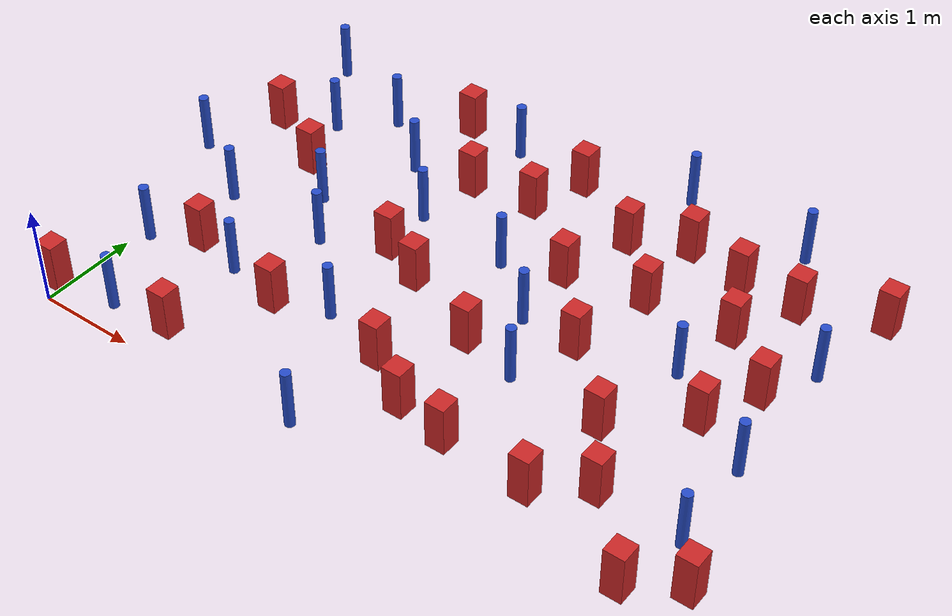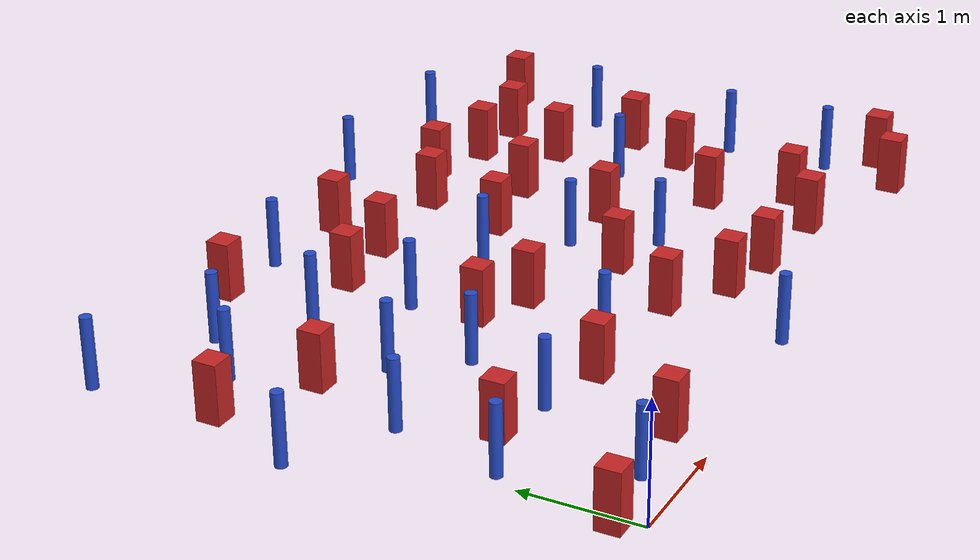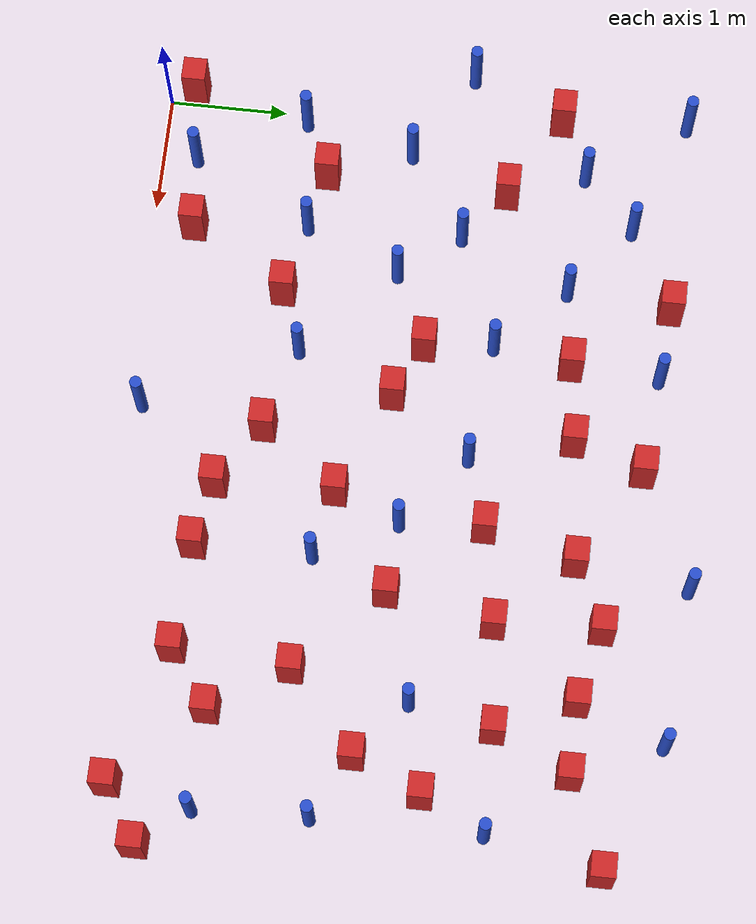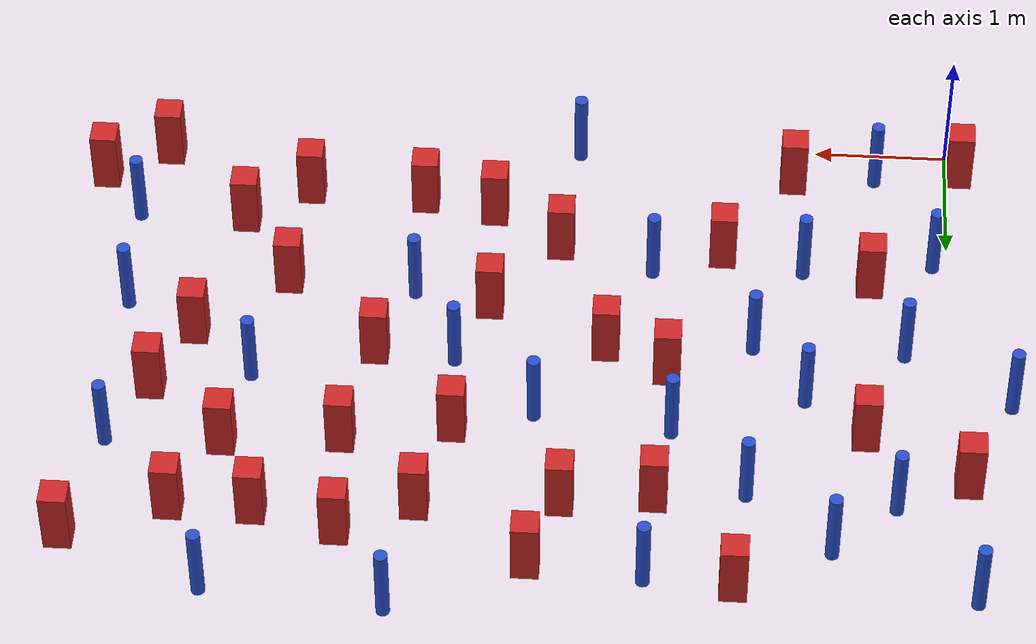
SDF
<sdf version="1.6">
 <model name="dense_12">
  <model name="square_post_obstacle1">
   <static>true</static>
   <pose>3.60561085752 3.06510060845 -6.11067671241e-07 -5.50515727128e-06 -8.79689657224e-07 2.37013304536e-05</pose>
   <link name="link">
    <pose>0 0 0.25 0 -0 0</pose>
    <inertial>
     <mass>100</mass>
     <inertia>
      <ixx>0.166667</ixx>
      <ixy>0</ixy>
      <ixz>0</ixz>
      <iyy>0.166667</iyy>
      <iyz>0</iyz>
      <izz>0.166667</izz>
     </inertia>
    </inertial>
    <collision name="collision"><geometry><box><size>.2 .2 .5</size></box></geometry></collision>
    <visual name="visual">
     <geometry><box><size>.2 .2 .5</size></box></geometry>
     <material>
      <script><name>Gazebo/Red</name><uri>file://media/materials/scripts/gazebo.material</uri></script>
     </material>
    </visual>
   </link>
  </model>
  <model name="pole_obstacle0">
   <static>true</static>
   <pose>2.01684290447 2.99197757127 -9.47619616065e-06 5.49618799738e-07 2.36310414047e-07 -1.55090534808e-07</pose>
   <link name="link">
    <pose>0 0 0.3 0 -0 0</pose>
    <inertial>
     <mass>1</mass>
     <inertia><ixx>0.145833</ixx><ixy>0</ixy><ixz>0</ixz><iyy>0.145833</iyy><iyz>0</iyz><izz>0.125</izz></inertia>
    </inertial>
    <collision name="collision">
     <geometry><cylinder><radius>0.05</radius><length>.6</length></cylinder></geometry>
    </collision>
    <visual name="visual">
     <geometry><cylinder><radius>0.05</radius><length>.6</length></cylinder></geometry>
     <material>
      <script><name>Gazebo/Blue</name><uri>file://media/materials/scripts/gazebo.material</uri></script>
     </material>
    </visual>
   </link>
  </model>
  <model name="pole_obstacle3">
   <static>true</static>
   <pose>6.12126041712 1.92768375661 -9.47619616065e-06 5.49618799738e-07 2.36310414071e-07 -1.55090534796e-07</pose>
   <link name="link">
    <pose>0 0 0.3 0 -0 0</pose>
    <inertial>
     <mass>1</mass>
     <inertia><ixx>0.145833</ixx><ixy>0</ixy><ixz>0</ixz><iyy>0.145833</iyy><iyz>0</iyz><izz>0.125</izz></inertia>
    </inertial>
    <collision name="collision">
     <geometry><cylinder><radius>0.05</radius><length>.6</length></cylinder></geometry>
    </collision>
    <visual name="visual">
     <geometry><cylinder><radius>0.05</radius><length>.6</length></cylinder></geometry>
     <material>
      <script><name>Gazebo/Blue</name><uri>file://media/materials/scripts/gazebo.material</uri></script>
     </material>
    </visual>
   </link>
  </model>
  <model name="square_post_obstacle13">
   <static>true</static>
   <pose>-0.0968748303471 0.21565951249 -6.11067671241e-07 -5.50515727128e-06 -8.79689657224e-07 2.37013304536e-05</pose>
   <link name="link">
    <pose>0 0 0.25 0 -0 0</pose>
    <inertial>
     <mass>100</mass>
     <inertia>
      <ixx>0.166667</ixx>
      <ixy>0</ixy>
      <ixz>0</ixz>
      <iyy>0.166667</iyy>
      <iyz>0</iyz>
      <izz>0.166667</izz>
     </inertia>
    </inertial>
    <collision name="collision"><geometry><box><size>.2 .2 .5</size></box></geometry></collision>
    <visual name="visual">
     <geometry><box><size>.2 .2 .5</size></box></geometry>
     <material>
      <script><name>Gazebo/Red</name><uri>file://media/materials/scripts/gazebo.material</uri></script>
     </material>
    </visual>
   </link>
  </model>
  <model name="square_post_obstacle14">
   <static>true</static>
   <pose>1.17293309374 0.360948759211 -6.11067671241e-07 -5.50515727128e-06 -8.79689657224e-07 2.37013304536e-05</pose>
   <link name="link">
    <pose>0 0 0.25 0 -0 0</pose>
    <inertial>
     <mass>100</mass>
     <inertia>
      <ixx>0.166667</ixx>
      <ixy>0</ixy>
      <ixz>0</ixz>
      <iyy>0.166667</iyy>
      <iyz>0</iyz>
      <izz>0.166667</izz>
     </inertia>
    </inertial>
    <collision name="collision"><geometry><box><size>.2 .2 .5</size></box></geometry></collision>
    <visual name="visual">
     <geometry><box><size>.2 .2 .5</size></box></geometry>
     <material>
      <script><name>Gazebo/Red</name><uri>file://media/materials/scripts/gazebo.material</uri></script>
     </material>
    </visual>
   </link>
  </model>
  <model name="pole_obstacle10">
   <static>true</static>
   <pose>6.1121748208 3.30168363211 -9.47619616065e-06 5.49618799738e-07 2.36310414051e-07 -1.55090534805e-07</pose>
   <link name="link">
    <pose>0 0 0.3 0 -0 0</pose>
    <inertial>
     <mass>1</mass>
     <inertia><ixx>0.145833</ixx><ixy>0</ixy><ixz>0</ixz><iyy>0.145833</iyy><iyz>0</iyz><izz>0.125</izz></inertia>
    </inertial>
    <collision name="collision">
     <geometry><cylinder><radius>0.05</radius><length>.6</length></cylinder></geometry>
    </collision>
    <visual name="visual">
     <geometry><cylinder><radius>0.05</radius><length>.6</length></cylinder></geometry>
     <material>
      <script><name>Gazebo/Blue</name><uri>file://media/materials/scripts/gazebo.material</uri></script>
     </material>
    </visual>
   </link>
  </model>
  <model name="square_post_obstacle21">
   <static>true</static>
   <pose>2.07038140015 2.41308263404 -6.11067671241e-07 -5.50515727128e-06 -8.79689657224e-07 2.37013304536e-05</pose>
   <link name="link">
    <pose>0 0 0.25 0 -0 0</pose>
    <inertial>
     <mass>100</mass>
     <inertia>
      <ixx>0.166667</ixx>
      <ixy>0</ixy>
      <ixz>0</ixz>
      <iyy>0.166667</iyy>
      <iyz>0</iyz>
      <izz>0.166667</izz>
     </inertia>
    </inertial>
    <collision name="collision"><geometry><box><size>.2 .2 .5</size></box></geometry></collision>
    <visual name="visual">
     <geometry><box><size>.2 .2 .5</size></box></geometry>
     <material>
      <script><name>Gazebo/Red</name><uri>file://media/materials/scripts/gazebo.material</uri></script>
     </material>
    </visual>
   </link>
  </model>
  <model name="pole_obstacle15">
   <static>true</static>
   <pose>-0.46060873047 2.60166311697 -9.47619616065e-06 5.49618799737e-07 2.36310414073e-07 -1.55090534793e-07</pose>
   <link name="link">
    <pose>0 0 0.3 0 -0 0</pose>
    <inertial>
     <mass>1</mass>
     <inertia><ixx>0.145833</ixx><ixy>0</ixy><ixz>0</ixz><iyy>0.145833</iyy><iyz>0</iyz><izz>0.125</izz></inertia>
    </inertial>
    <collision name="collision">
     <geometry><cylinder><radius>0.05</radius><length>.6</length></cylinder></geometry>
    </collision>
    <visual name="visual">
     <geometry><cylinder><radius>0.05</radius><length>.6</length></cylinder></geometry>
     <material>
      <script><name>Gazebo/Blue</name><uri>file://media/materials/scripts/gazebo.material</uri></script>
     </material>
    </visual>
   </link>
  </model>
  <model name="square_post_obstacle24">
   <static>true</static>
   <pose>2.78826813013 3.72345648969 -6.11067671241e-07 -5.50515727128e-06 -8.79689657224e-07 2.37013304536e-05</pose>
   <link name="link">
    <pose>0 0 0.25 0 -0 0</pose>
    <inertial>
     <mass>100</mass>
     <inertia>
      <ixx>0.166667</ixx>
      <ixy>0</ixy>
      <ixz>0</ixz>
      <iyy>0.166667</iyy>
      <iyz>0</iyz>
      <izz>0.166667</izz>
     </inertia>
    </inertial>
    <collision name="collision"><geometry><box><size>.2 .2 .5</size></box></geometry></collision>
    <visual name="visual">
     <geometry><box><size>.2 .2 .5</size></box></geometry>
     <material>
      <script><name>Gazebo/Red</name><uri>file://media/materials/scripts/gazebo.material</uri></script>
     </material>
    </visual>
   </link>
  </model>
  <model name="pole_obstacle24">
   <static>true</static>
   <pose>3.63870386104 2.3700347278 -9.47619616065e-06 5.49618799737e-07 2.36310414051e-07 -1.55090534807e-07</pose>
   <link name="link">
    <pose>0 0 0.3 0 -0 0</pose>
    <inertial>
     <mass>1</mass>
     <inertia><ixx>0.145833</ixx><ixy>0</ixy><ixz>0</ixz><iyy>0.145833</iyy><iyz>0</iyz><izz>0.125</izz></inertia>
    </inertial>
    <collision name="collision">
     <geometry><cylinder><radius>0.05</radius><length>.6</length></cylinder></geometry>
    </collision>
    <visual name="visual">
     <geometry><cylinder><radius>0.05</radius><length>.6</length></cylinder></geometry>
     <material>
      <script><name>Gazebo/Blue</name><uri>file://media/materials/scripts/gazebo.material</uri></script>
     </material>
    </visual>
   </link>
  </model>
  <model name="pole_obstacle40">
   <static>true</static>
   <pose>-0.182909817355 4.45832482856 -9.47619616065e-06 5.49618799738e-07 2.36310414064e-07 -1.55090534799e-07</pose>
   <link name="link">
    <pose>0 0 0.3 0 -0 0</pose>
    <inertial>
     <mass>1</mass>
     <inertia><ixx>0.145833</ixx><ixy>0</ixy><ixz>0</ixz><iyy>0.145833</iyy><iyz>0</iyz><izz>0.125</izz></inertia>
    </inertial>
    <collision name="collision">
     <geometry><cylinder><radius>0.05</radius><length>.6</length></cylinder></geometry>
    </collision>
    <visual name="visual">
     <geometry><cylinder><radius>0.05</radius><length>.6</length></cylinder></geometry>
     <material>
      <script><name>Gazebo/Blue</name><uri>file://media/materials/scripts/gazebo.material</uri></script>
     </material>
    </visual>
   </link>
  </model>
  <model name="pole_obstacle45">
   <static>true</static>
   <pose>3.0238369806 2.87842673954 -9.47619616065e-06 5.49618799737e-07 2.36310414051e-07 -1.55090534807e-07</pose>
   <link name="link">
    <pose>0 0 0.3 0 -0 0</pose>
    <inertial>
     <mass>1</mass>
     <inertia><ixx>0.145833</ixx><ixy>0</ixy><ixz>0</ixz><iyy>0.145833</iyy><iyz>0</iyz><izz>0.125</izz></inertia>
    </inertial>
    <collision name="collision">
     <geometry><cylinder><radius>0.05</radius><length>.6</length></cylinder></geometry>
    </collision>
    <visual name="visual">
     <geometry><cylinder><radius>0.05</radius><length>.6</length></cylinder></geometry>
     <material>
      <script><name>Gazebo/Blue</name><uri>file://media/materials/scripts/gazebo.material</uri></script>
     </material>
    </visual>
   </link>
  </model>
  <model name="square_post_obstacle48">
   <static>true</static>
   <pose>4.4022666731 3.21294760835 -6.11067671241e-07 -5.50515727128e-06 -8.79689657224e-07 2.37013304536e-05</pose>
   <link name="link">
    <pose>0 0 0.25 0 -0 0</pose>
    <inertial>
     <mass>100</mass>
     <inertia>
      <ixx>0.166667</ixx>
      <ixy>0</ixy>
      <ixz>0</ixz>
      <iyy>0.166667</iyy>
      <iyz>0</iyz>
      <izz>0.166667</izz>
     </inertia>
    </inertial>
    <collision name="collision"><geometry><box><size>.2 .2 .5</size></box></geometry></collision>
    <visual name="visual">
     <geometry><box><size>.2 .2 .5</size></box></geometry>
     <material>
      <script><name>Gazebo/Red</name><uri>file://media/materials/scripts/gazebo.material</uri></script>
     </material>
    </visual>
   </link>
  </model>
  <model name="square_post_obstacle50">
   <static>true</static>
   <pose>4.86429123127 0.682569277794 -6.11067671241e-07 -5.50515727128e-06 -8.79689657224e-07 2.37013304536e-05</pose>
   <link name="link">
    <pose>0 0 0.25 0 -0 0</pose>
    <inertial>
     <mass>100</mass>
     <inertia>
      <ixx>0.166667</ixx>
      <ixy>0</ixy>
      <ixz>0</ixz>
      <iyy>0.166667</iyy>
      <iyz>0</iyz>
      <izz>0.166667</izz>
     </inertia>
    </inertial>
    <collision name="collision"><geometry><box><size>.2 .2 .5</size></box></geometry></collision>
    <visual name="visual">
     <geometry><box><size>.2 .2 .5</size></box></geometry>
     <material>
      <script><name>Gazebo/Red</name><uri>file://media/materials/scripts/gazebo.material</uri></script>
     </material>
    </visual>
   </link>
  </model>
  <model name="square_post_obstacle52">
   <static>true</static>
   <pose>3.4132791257 1.82123992366 -6.11067671241e-07 -5.50515727128e-06 -8.79689657224e-07 2.37013304536e-05</pose>
   <link name="link">
    <pose>0 0 0.25 0 -0 0</pose>
    <inertial>
     <mass>100</mass>
     <inertia>
      <ixx>0.166667</ixx>
      <ixy>0</ixy>
      <ixz>0</ixz>
      <iyy>0.166667</iyy>
      <iyz>0</iyz>
      <izz>0.166667</izz>
     </inertia>
    </inertial>
    <collision name="collision"><geometry><box><size>.2 .2 .5</size></box></geometry></collision>
    <visual name="visual">
     <geometry><box><size>.2 .2 .5</size></box></geometry>
     <material>
      <script><name>Gazebo/Red</name><uri>file://media/materials/scripts/gazebo.material</uri></script>
     </material>
    </visual>
   </link>
  </model>
  <model name="pole_obstacle52">
   <static>true</static>
   <pose>2.16601597922 4.38896975108 -9.47619616065e-06 5.49618799738e-07 2.3631041406e-07 -1.55090534801e-07</pose>
   <link name="link">
    <pose>0 0 0.3 0 -0 0</pose>
    <inertial>
     <mass>1</mass>
     <inertia><ixx>0.145833</ixx><ixy>0</ixy><ixz>0</ixz><iyy>0.145833</iyy><iyz>0</iyz><izz>0.125</izz></inertia>
    </inertial>
    <collision name="collision">
     <geometry><cylinder><radius>0.05</radius><length>.6</length></cylinder></geometry>
    </collision>
    <visual name="visual">
     <geometry><cylinder><radius>0.05</radius><length>.6</length></cylinder></geometry>
     <material>
      <script><name>Gazebo/Blue</name><uri>file://media/materials/scripts/gazebo.material</uri></script>
     </material>
    </visual>
   </link>
  </model>
  <model name="pole_obstacle53">
   <static>true</static>
   <pose>0.321605103641 2.13557509715 -9.47619616065e-06 5.49618799738e-07 2.36310414065e-07 -1.55090534798e-07</pose>
   <link name="link">
    <pose>0 0 0.3 0 -0 0</pose>
    <inertial>
     <mass>1</mass>
     <inertia><ixx>0.145833</ixx><ixy>0</ixy><ixz>0</ixz><iyy>0.145833</iyy><iyz>0</iyz><izz>0.125</izz></inertia>
    </inertial>
    <collision name="collision">
     <geometry><cylinder><radius>0.05</radius><length>.6</length></cylinder></geometry>
    </collision>
    <visual name="visual">
     <geometry><cylinder><radius>0.05</radius><length>.6</length></cylinder></geometry>
     <material>
      <script><name>Gazebo/Blue</name><uri>file://media/materials/scripts/gazebo.material</uri></script>
     </material>
    </visual>
   </link>
  </model>
  <model name="square_post_obstacle58">
   <static>true</static>
   <pose>5.58534849371 2.20756425732 -6.11067671241e-07 -5.50515727128e-06 -8.79689657224e-07 2.37013304536e-05</pose>
   <link name="link">
    <pose>0 0 0.25 0 -0 0</pose>
    <inertial>
     <mass>100</mass>
     <inertia>
      <ixx>0.166667</ixx>
      <ixy>0</ixy>
      <ixz>0</ixz>
      <iyy>0.166667</iyy>
      <iyz>0</iyz>
      <izz>0.166667</izz>
     </inertia>
    </inertial>
    <collision name="collision"><geometry><box><size>.2 .2 .5</size></box></geometry></collision>
    <visual name="visual">
     <geometry><box><size>.2 .2 .5</size></box></geometry>
     <material>
      <script><name>Gazebo/Red</name><uri>file://media/materials/scripts/gazebo.material</uri></script>
     </material>
    </visual>
   </link>
  </model>
  <model name="pole_obstacle57">
   <static>true</static>
   <pose>0.547766656235 0.299006410185 -9.47619616065e-06 5.49618799737e-07 2.3631041406e-07 -1.55090534799e-07</pose>
   <link name="link">
    <pose>0 0 0.3 0 -0 0</pose>
    <inertial>
     <mass>1</mass>
     <inertia><ixx>0.145833</ixx><ixy>0</ixy><ixz>0</ixz><iyy>0.145833</iyy><iyz>0</iyz><izz>0.125</izz></inertia>
    </inertial>
    <collision name="collision">
     <geometry><cylinder><radius>0.05</radius><length>.6</length></cylinder></geometry>
    </collision>
    <visual name="visual">
     <geometry><cylinder><radius>0.05</radius><length>.6</length></cylinder></geometry>
     <material>
      <script><name>Gazebo/Blue</name><uri>file://media/materials/scripts/gazebo.material</uri></script>
     </material>
    </visual>
   </link>
  </model>
  <model name="pole_obstacle60">
   <static>true</static>
   <pose>5.12357058062 2.60648602858 -9.47619616065e-06 5.49618799738e-07 2.36310414051e-07 -1.55090534805e-07</pose>
   <link name="link">
    <pose>0 0 0.3 0 -0 0</pose>
    <inertial>
     <mass>1</mass>
     <inertia><ixx>0.145833</ixx><ixy>0</ixy><ixz>0</ixz><iyy>0.145833</iyy><iyz>0</iyz><izz>0.125</izz></inertia>
    </inertial>
    <collision name="collision">
     <geometry><cylinder><radius>0.05</radius><length>.6</length></cylinder></geometry>
    </collision>
    <visual name="visual">
     <geometry><cylinder><radius>0.05</radius><length>.6</length></cylinder></geometry>
     <material>
      <script><name>Gazebo/Blue</name><uri>file://media/materials/scripts/gazebo.material</uri></script>
     </material>
    </visual>
   </link>
  </model>
  <model name="square_post_obstacle64">
   <static>true</static>
   <pose>2.91829927237 1.17195060015 -6.11067671241e-07 -5.50515727128e-06 -8.79689657224e-07 2.37013304536e-05</pose>
   <link name="link">
    <pose>0 0 0.25 0 -0 0</pose>
    <inertial>
     <mass>100</mass>
     <inertia>
      <ixx>0.166667</ixx>
      <ixy>0</ixy>
      <ixz>0</ixz>
      <iyy>0.166667</iyy>
      <iyz>0</iyz>
      <izz>0.166667</izz>
     </inertia>
    </inertial>
    <collision name="collision"><geometry><box><size>.2 .2 .5</size></box></geometry></collision>
    <visual name="visual">
     <geometry><box><size>.2 .2 .5</size></box></geometry>
     <material>
      <script><name>Gazebo/Red</name><uri>file://media/materials/scripts/gazebo.material</uri></script>
     </material>
    </visual>
   </link>
  </model>
  <model name="square_post_obstacle65">
   <static>true</static>
   <pose>3.44394849918 0.83601837643 -6.11067671241e-07 -5.50515727128e-06 -8.79689657224e-07 2.37013304536e-05</pose>
   <link name="link">
    <pose>0 0 0.25 0 -0 0</pose>
    <inertial>
     <mass>100</mass>
     <inertia>
      <ixx>0.166667</ixx>
      <ixy>0</ixy>
      <ixz>0</ixz>
      <iyy>0.166667</iyy>
      <iyz>0</iyz>
      <izz>0.166667</izz>
     </inertia>
    </inertial>
    <collision name="collision"><geometry><box><size>.2 .2 .5</size></box></geometry></collision>
    <visual name="visual">
     <geometry><box><size>.2 .2 .5</size></box></geometry>
     <material>
      <script><name>Gazebo/Red</name><uri>file://media/materials/scripts/gazebo.material</uri></script>
     </material>
    </visual>
   </link>
  </model>
  <model name="square_post_obstacle71">
   <static>true</static>
   <pose>3.81692374479 3.82107002358 -6.11067671241e-07 -5.50515727128e-06 -8.79689657224e-07 2.37013304536e-05</pose>
   <link name="link">
    <pose>0 0 0.25 0 -0 0</pose>
    <inertial>
     <mass>100</mass>
     <inertia>
      <ixx>0.166667</ixx>
      <ixy>0</ixy>
      <ixz>0</ixz>
      <iyy>0.166667</iyy>
      <iyz>0</iyz>
      <izz>0.166667</izz>
     </inertia>
    </inertial>
    <collision name="collision"><geometry><box><size>.2 .2 .5</size></box></geometry></collision>
    <visual name="visual">
     <geometry><box><size>.2 .2 .5</size></box></geometry>
     <material>
      <script><name>Gazebo/Red</name><uri>file://media/materials/scripts/gazebo.material</uri></script>
     </material>
    </visual>
   </link>
  </model>
  <model name="square_post_obstacle74">
   <static>true</static>
   <pose>5.56726960221 3.92317340426 -6.11067671241e-07 -5.50515727128e-06 -8.79689657224e-07 2.37013304536e-05</pose>
   <link name="link">
    <pose>0 0 0.25 0 -0 0</pose>
    <inertial>
     <mass>100</mass>
     <inertia>
      <ixx>0.166667</ixx>
      <ixy>0</ixy>
      <ixz>0</ixz>
      <iyy>0.166667</iyy>
      <iyz>0</iyz>
      <izz>0.166667</izz>
     </inertia>
    </inertial>
    <collision name="collision"><geometry><box><size>.2 .2 .5</size></box></geometry></collision>
    <visual name="visual">
     <geometry><box><size>.2 .2 .5</size></box></geometry>
     <material>
      <script><name>Gazebo/Red</name><uri>file://media/materials/scripts/gazebo.material</uri></script>
     </material>
    </visual>
   </link>
  </model>
  <model name="pole_obstacle82">
   <static>true</static>
   <pose>1.46217024665 3.56431129272 -9.47619616065e-06 5.49618799737e-07 2.36310414062e-07 -1.55090534798e-07</pose>
   <link name="link">
    <pose>0 0 0.3 0 -0 0</pose>
    <inertial>
     <mass>1</mass>
     <inertia><ixx>0.145833</ixx><ixy>0</ixy><ixz>0</ixz><iyy>0.145833</iyy><iyz>0</iyz><izz>0.125</izz></inertia>
    </inertial>
    <collision name="collision">
     <geometry><cylinder><radius>0.05</radius><length>.6</length></cylinder></geometry>
    </collision>
    <visual name="visual">
     <geometry><cylinder><radius>0.05</radius><length>.6</length></cylinder></geometry>
     <material>
      <script><name>Gazebo/Blue</name><uri>file://media/materials/scripts/gazebo.material</uri></script>
     </material>
    </visual>
   </link>
  </model>
  <model name="square_post_obstacle80">
   <static>true</static>
   <pose>5.99793431074 0.315845441952 -6.11067671241e-07 -5.50515727128e-06 -8.79689657224e-07 2.37013304536e-05</pose>
   <link name="link">
    <pose>0 0 0.25 0 -0 0</pose>
    <inertial>
     <mass>100</mass>
     <inertia>
      <ixx>0.166667</ixx>
      <ixy>0</ixy>
      <ixz>0</ixz>
      <iyy>0.166667</iyy>
      <iyz>0</iyz>
      <izz>0.166667</izz>
     </inertia>
    </inertial>
    <collision name="collision"><geometry><box><size>.2 .2 .5</size></box></geometry></collision>
    <visual name="visual">
     <geometry><box><size>.2 .2 .5</size></box></geometry>
     <material>
      <script><name>Gazebo/Red</name><uri>file://media/materials/scripts/gazebo.material</uri></script>
     </material>
    </visual>
   </link>
  </model>
  <model name="pole_obstacle93">
   <static>true</static>
   <pose>0.10760399814 1.20183386712 -9.47619616065e-06 5.49618799737e-07 2.36310414057e-07 -1.55090534803e-07</pose>
   <link name="link">
    <pose>0 0 0.3 0 -0 0</pose>
    <inertial>
     <mass>1</mass>
     <inertia><ixx>0.145833</ixx><ixy>0</ixy><ixz>0</ixz><iyy>0.145833</iyy><iyz>0</iyz><izz>0.125</izz></inertia>
    </inertial>
    <collision name="collision">
     <geometry><cylinder><radius>0.05</radius><length>.6</length></cylinder></geometry>
    </collision>
    <visual name="visual">
     <geometry><cylinder><radius>0.05</radius><length>.6</length></cylinder></geometry>
     <material>
      <script><name>Gazebo/Blue</name><uri>file://media/materials/scripts/gazebo.material</uri></script>
     </material>
    </visual>
   </link>
  </model>
  <model name="pole_obstacle98">
   <static>true</static>
   <pose>3.95911625656 4.75906808122 -9.47619616065e-06 5.49618799737e-07 2.36310414049e-07 -1.55090534808e-07</pose>
   <link name="link">
    <pose>0 0 0.3 0 -0 0</pose>
    <inertial>
     <mass>1</mass>
     <inertia><ixx>0.145833</ixx><ixy>0</ixy><ixz>0</ixz><iyy>0.145833</iyy><iyz>0</iyz><izz>0.125</izz></inertia>
    </inertial>
    <collision name="collision">
     <geometry><cylinder><radius>0.05</radius><length>.6</length></cylinder></geometry>
    </collision>
    <visual name="visual">
     <geometry><cylinder><radius>0.05</radius><length>.6</length></cylinder></geometry>
     <material>
      <script><name>Gazebo/Blue</name><uri>file://media/materials/scripts/gazebo.material</uri></script>
     </material>
    </visual>
   </link>
  </model>
  <model name="pole_obstacle100">
   <static>true</static>
   <pose>1.44237367063 2.12480274671 -9.47619616065e-06 5.49618799737e-07 2.36310414062e-07 -1.55090534798e-07</pose>
   <link name="link">
    <pose>0 0 0.3 0 -0 0</pose>
    <inertial>
     <mass>1</mass>
     <inertia><ixx>0.145833</ixx><ixy>0</ixy><ixz>0</ixz><iyy>0.145833</iyy><iyz>0</iyz><izz>0.125</izz></inertia>
    </inertial>
    <collision name="collision">
     <geometry><cylinder><radius>0.05</radius><length>.6</length></cylinder></geometry>
    </collision>
    <visual name="visual">
     <geometry><cylinder><radius>0.05</radius><length>.6</length></cylinder></geometry>
     <material>
      <script><name>Gazebo/Blue</name><uri>file://media/materials/scripts/gazebo.material</uri></script>
     </material>
    </visual>
   </link>
  </model>
  <model name="pole_obstacle101">
   <static>true</static>
   <pose>1.05146225618 2.63058908346 -9.47619616065e-06 5.49618799737e-07 2.36310414062e-07 -1.55090534798e-07</pose>
   <link name="link">
    <pose>0 0 0.3 0 -0 0</pose>
    <inertial>
     <mass>1</mass>
     <inertia><ixx>0.145833</ixx><ixy>0</ixy><ixz>0</ixz><iyy>0.145833</iyy><iyz>0</iyz><izz>0.125</izz></inertia>
    </inertial>
    <collision name="collision">
     <geometry><cylinder><radius>0.05</radius><length>.6</length></cylinder></geometry>
    </collision>
    <visual name="visual">
     <geometry><cylinder><radius>0.05</radius><length>.6</length></cylinder></geometry>
     <material>
      <script><name>Gazebo/Blue</name><uri>file://media/materials/scripts/gazebo.material</uri></script>
     </material>
    </visual>
   </link>
  </model>
  <model name="pole_obstacle107">
   <static>true</static>
   <pose>1.08461921749 1.32073771476 -9.47619616065e-06 5.49618799737e-07 2.36310414065e-07 -1.55090534798e-07</pose>
   <link name="link">
    <pose>0 0 0.3 0 -0 0</pose>
    <inertial>
     <mass>1</mass>
     <inertia><ixx>0.145833</ixx><ixy>0</ixy><ixz>0</ixz><iyy>0.145833</iyy><iyz>0</iyz><izz>0.125</izz></inertia>
    </inertial>
    <collision name="collision">
     <geometry><cylinder><radius>0.05</radius><length>.6</length></cylinder></geometry>
    </collision>
    <visual name="visual">
     <geometry><cylinder><radius>0.05</radius><length>.6</length></cylinder></geometry>
     <material>
      <script><name>Gazebo/Blue</name><uri>file://media/materials/scripts/gazebo.material</uri></script>
     </material>
    </visual>
   </link>
  </model>
  <model name="square_post_obstacle98">
   <static>true</static>
   <pose>4.93567388542 1.64514527499 -6.11067671241e-07 -5.50515727128e-06 -8.79689657224e-07 2.37013304536e-05</pose>
   <link name="link">
    <pose>0 0 0.25 0 -0 0</pose>
    <inertial>
     <mass>100</mass>
     <inertia>
      <ixx>0.166667</ixx>
      <ixy>0</ixy>
      <ixz>0</ixz>
      <iyy>0.166667</iyy>
      <iyz>0</iyz>
      <izz>0.166667</izz>
     </inertia>
    </inertial>
    <collision name="collision"><geometry><box><size>.2 .2 .5</size></box></geometry></collision>
    <visual name="visual">
     <geometry><box><size>.2 .2 .5</size></box></geometry>
     <material>
      <script><name>Gazebo/Red</name><uri>file://media/materials/scripts/gazebo.material</uri></script>
     </material>
    </visual>
   </link>
  </model>
  <model name="pole_obstacle113">
   <static>true</static>
   <pose>0.84218929867 4.06209744897 -9.47619616065e-06 5.49618799737e-07 2.36310414065e-07 -1.55090534796e-07</pose>
   <link name="link">
    <pose>0 0 0.3 0 -0 0</pose>
    <inertial>
     <mass>1</mass>
     <inertia><ixx>0.145833</ixx><ixy>0</ixy><ixz>0</ixz><iyy>0.145833</iyy><iyz>0</iyz><izz>0.125</izz></inertia>
    </inertial>
    <collision name="collision">
     <geometry><cylinder><radius>0.05</radius><length>.6</length></cylinder></geometry>
    </collision>
    <visual name="visual">
     <geometry><cylinder><radius>0.05</radius><length>.6</length></cylinder></geometry>
     <material>
      <script><name>Gazebo/Blue</name><uri>file://media/materials/scripts/gazebo.material</uri></script>
     </material>
    </visual>
   </link>
  </model>
  <model name="square_post_obstacle100">
   <static>true</static>
   <pose>2.99437277476 4.31176931934 -6.11067671241e-07 -5.50515727128e-06 -8.79689657224e-07 2.37013304536e-05</pose>
   <link name="link">
    <pose>0 0 0.25 0 -0 0</pose>
    <inertial>
     <mass>100</mass>
     <inertia>
      <ixx>0.166667</ixx>
      <ixy>0</ixy>
      <ixz>0</ixz>
      <iyy>0.166667</iyy>
      <iyz>0</iyz>
      <izz>0.166667</izz>
     </inertia>
    </inertial>
    <collision name="collision"><geometry><box><size>.2 .2 .5</size></box></geometry></collision>
    <visual name="visual">
     <geometry><box><size>.2 .2 .5</size></box></geometry>
     <material>
      <script><name>Gazebo/Red</name><uri>file://media/materials/scripts/gazebo.material</uri></script>
     </material>
    </visual>
   </link>
  </model>
  <model name="square_post_obstacle107">
   <static>true</static>
   <pose>2.5309783764 2.2004067568 -6.11067671241e-07 -5.50515727128e-06 -8.79689657224e-07 2.37013304536e-05</pose>
   <link name="link">
    <pose>0 0 0.25 0 -0 0</pose>
    <inertial>
     <mass>100</mass>
     <inertia>
      <ixx>0.166667</ixx>
      <ixy>0</ixy>
      <ixz>0</ixz>
      <iyy>0.166667</iyy>
      <iyz>0</iyz>
      <izz>0.166667</izz>
     </inertia>
    </inertial>
    <collision name="collision"><geometry><box><size>.2 .2 .5</size></box></geometry></collision>
    <visual name="visual">
     <geometry><box><size>.2 .2 .5</size></box></geometry>
     <material>
      <script><name>Gazebo/Red</name><uri>file://media/materials/scripts/gazebo.material</uri></script>
     </material>
    </visual>
   </link>
  </model>
  <model name="square_post_obstacle109">
   <static>true</static>
   <pose>4.23049179861 2.33039096919 -6.11067671241e-07 -5.50515727128e-06 -8.79689657224e-07 2.37013304536e-05</pose>
   <link name="link">
    <pose>0 0 0.25 0 -0 0</pose>
    <inertial>
     <mass>100</mass>
     <inertia>
      <ixx>0.166667</ixx>
      <ixy>0</ixy>
      <ixz>0</ixz>
      <iyy>0.166667</iyy>
      <iyz>0</iyz>
      <izz>0.166667</izz>
     </inertia>
    </inertial>
    <collision name="collision"><geometry><box><size>.2 .2 .5</size></box></geometry></collision>
    <visual name="visual">
     <geometry><box><size>.2 .2 .5</size></box></geometry>
     <material>
      <script><name>Gazebo/Red</name><uri>file://media/materials/scripts/gazebo.material</uri></script>
     </material>
    </visual>
   </link>
  </model>
  <model name="square_post_obstacle115">
   <static>true</static>
   <pose>5.84193627538 2.77699016452 -6.11067671241e-07 -5.50515727128e-06 -8.79689657224e-07 2.37013304536e-05</pose>
   <link name="link">
    <pose>0 0 0.25 0 -0 0</pose>
    <inertial>
     <mass>100</mass>
     <inertia>
      <ixx>0.166667</ixx>
      <ixy>0</ixy>
      <ixz>0</ixz>
      <iyy>0.166667</iyy>
      <iyz>0</iyz>
      <izz>0.166667</izz>
     </inertia>
    </inertial>
    <collision name="collision"><geometry><box><size>.2 .2 .5</size></box></geometry></collision>
    <visual name="visual">
     <geometry><box><size>.2 .2 .5</size></box></geometry>
     <material>
      <script><name>Gazebo/Red</name><uri>file://media/materials/scripts/gazebo.material</uri></script>
     </material>
    </visual>
   </link>
  </model>
  <model name="square_post_obstacle128">
   <static>true</static>
   <pose>6.45887169266 0.600241494292 -6.11067671241e-07 -5.50515727128e-06 -8.79689657224e-07 2.37013304536e-05</pose>
   <link name="link">
    <pose>0 0 0.25 0 -0 0</pose>
    <inertial>
     <mass>100</mass>
     <inertia>
      <ixx>0.166667</ixx>
      <ixy>0</ixy>
      <ixz>0</ixz>
      <iyy>0.166667</iyy>
      <iyz>0</iyz>
      <izz>0.166667</izz>
     </inertia>
    </inertial>
    <collision name="collision"><geometry><box><size>.2 .2 .5</size></box></geometry></collision>
    <visual name="visual">
     <geometry><box><size>.2 .2 .5</size></box></geometry>
     <material>
      <script><name>Gazebo/Red</name><uri>file://media/materials/scripts/gazebo.material</uri></script>
     </material>
    </visual>
   </link>
  </model>
  <model name="square_post_obstacle135">
   <static>true</static>
   <pose>2.1214784605 3.64706732813 -6.11067671241e-07 -5.50515727128e-06 -8.79689657224e-07 2.37013304536e-05</pose>
   <link name="link">
    <pose>0 0 0.25 0 -0 0</pose>
    <inertial>
     <mass>100</mass>
     <inertia>
      <ixx>0.166667</ixx>
      <ixy>0</ixy>
      <ixz>0</ixz>
      <iyy>0.166667</iyy>
      <iyz>0</iyz>
      <izz>0.166667</izz>
     </inertia>
    </inertial>
    <collision name="collision"><geometry><box><size>.2 .2 .5</size></box></geometry></collision>
    <visual name="visual">
     <geometry><box><size>.2 .2 .5</size></box></geometry>
     <material>
      <script><name>Gazebo/Red</name><uri>file://media/materials/scripts/gazebo.material</uri></script>
     </material>
    </visual>
   </link>
  </model>
  <model name="pole_obstacle153">
   <static>true</static>
   <pose>2.82440432865 0.137287715491 -9.47619616065e-06 5.49618799737e-07 2.36310414074e-07 -1.55090534793e-07</pose>
   <link name="link">
    <pose>0 0 0.3 0 -0 0</pose>
    <inertial>
     <mass>1</mass>
     <inertia><ixx>0.145833</ixx><ixy>0</ixy><ixz>0</ixz><iyy>0.145833</iyy><iyz>0</iyz><izz>0.125</izz></inertia>
    </inertial>
    <collision name="collision">
     <geometry><cylinder><radius>0.05</radius><length>.6</length></cylinder></geometry>
    </collision>
    <visual name="visual">
     <geometry><cylinder><radius>0.05</radius><length>.6</length></cylinder></geometry>
     <material>
      <script><name>Gazebo/Blue</name><uri>file://media/materials/scripts/gazebo.material</uri></script>
     </material>
    </visual>
   </link>
  </model>
  <model name="square_post_obstacle150">
   <static>true</static>
   <pose>6.30704758825 4.23295420032 -6.11067671241e-07 -5.50515727128e-06 -8.79689657224e-07 2.37013304536e-05</pose>
   <link name="link">
    <pose>0 0 0.25 0 -0 0</pose>
    <inertial>
     <mass>100</mass>
     <inertia>
      <ixx>0.166667</ixx>
      <ixy>0</ixy>
      <ixz>0</ixz>
      <iyy>0.166667</iyy>
      <iyz>0</iyz>
      <izz>0.166667</izz>
     </inertia>
    </inertial>
    <collision name="collision"><geometry><box><size>.2 .2 .5</size></box></geometry></collision>
    <visual name="visual">
     <geometry><box><size>.2 .2 .5</size></box></geometry>
     <material>
      <script><name>Gazebo/Red</name><uri>file://media/materials/scripts/gazebo.material</uri></script>
     </material>
    </visual>
   </link>
  </model>
  <model name="square_post_obstacle156">
   <static>true</static>
   <pose>-0.130217988659 3.38574543311 -6.11067671241e-07 -5.50515727128e-06 -8.79689657224e-07 2.37013304536e-05</pose>
   <link name="link">
    <pose>0 0 0.25 0 -0 0</pose>
    <inertial>
     <mass>100</mass>
     <inertia>
      <ixx>0.166667</ixx>
      <ixy>0</ixy>
      <ixz>0</ixz>
      <iyy>0.166667</iyy>
      <iyz>0</iyz>
      <izz>0.166667</izz>
     </inertia>
    </inertial>
    <collision name="collision"><geometry><box><size>.2 .2 .5</size></box></geometry></collision>
    <visual name="visual">
     <geometry><box><size>.2 .2 .5</size></box></geometry>
     <material>
      <script><name>Gazebo/Red</name><uri>file://media/materials/scripts/gazebo.material</uri></script>
     </material>
    </visual>
   </link>
  </model>
  <model name="pole_obstacle177">
   <static>true</static>
   <pose>6.15233220444 0.996883784401 -9.47619616065e-06 5.49618799737e-07 2.36310414073e-07 -1.55090534792e-07</pose>
   <link name="link">
    <pose>0 0 0.3 0 -0 0</pose>
    <inertial>
     <mass>1</mass>
     <inertia><ixx>0.145833</ixx><ixy>0</ixy><ixz>0</ixz><iyy>0.145833</iyy><iyz>0</iyz><izz>0.125</izz></inertia>
    </inertial>
    <collision name="collision">
     <geometry><cylinder><radius>0.05</radius><length>.6</length></cylinder></geometry>
    </collision>
    <visual name="visual">
     <geometry><cylinder><radius>0.05</radius><length>.6</length></cylinder></geometry>
     <material>
      <script><name>Gazebo/Blue</name><uri>file://media/materials/scripts/gazebo.material</uri></script>
     </material>
    </visual>
   </link>
  </model>
  <model name="square_post_obstacle171">
   <static>true</static>
   <pose>4.360794451 4.08527384537 -6.11067671241e-07 -5.50515727128e-06 -8.79689657224e-07 2.37013304536e-05</pose>
   <link name="link">
    <pose>0 0 0.25 0 -0 0</pose>
    <inertial>
     <mass>100</mass>
     <inertia>
      <ixx>0.166667</ixx>
      <ixy>0</ixy>
      <ixz>0</ixz>
      <iyy>0.166667</iyy>
      <iyz>0</iyz>
      <izz>0.166667</izz>
     </inertia>
    </inertial>
    <collision name="collision"><geometry><box><size>.2 .2 .5</size></box></geometry></collision>
    <visual name="visual">
     <geometry><box><size>.2 .2 .5</size></box></geometry>
     <material>
      <script><name>Gazebo/Red</name><uri>file://media/materials/scripts/gazebo.material</uri></script>
     </material>
    </visual>
   </link>
  </model>
  <model name="square_post_obstacle172">
   <static>true</static>
   <pose>3.98167012698 0.731172233416 -6.11067671241e-07 -5.50515727128e-06 -8.79689657224e-07 2.37013304536e-05</pose>
   <link name="link">
    <pose>0 0 0.25 0 -0 0</pose>
    <inertial>
     <mass>100</mass>
     <inertia>
      <ixx>0.166667</ixx>
      <ixy>0</ixy>
      <ixz>0</ixz>
      <iyy>0.166667</iyy>
      <iyz>0</iyz>
      <izz>0.166667</izz>
     </inertia>
    </inertial>
    <collision name="collision"><geometry><box><size>.2 .2 .5</size></box></geometry></collision>
    <visual name="visual">
     <geometry><box><size>.2 .2 .5</size></box></geometry>
     <material>
      <script><name>Gazebo/Red</name><uri>file://media/materials/scripts/gazebo.material</uri></script>
     </material>
    </visual>
   </link>
  </model>
  <model name="square_post_obstacle180">
   <static>true</static>
   <pose>1.53198920509 4.43292054701 -6.11067671241e-07 -5.50515727128e-06 -8.79689657224e-07 2.37013304536e-05</pose>
   <link name="link">
    <pose>0 0 0.25 0 -0 0</pose>
    <inertial>
     <mass>100</mass>
     <inertia>
      <ixx>0.166667</ixx>
      <ixy>0</ixy>
      <ixz>0</ixz>
      <iyy>0.166667</iyy>
      <iyz>0</iyz>
      <izz>0.166667</izz>
     </inertia>
    </inertial>
    <collision name="collision"><geometry><box><size>.2 .2 .5</size></box></geometry></collision>
    <visual name="visual">
     <geometry><box><size>.2 .2 .5</size></box></geometry>
     <material>
      <script><name>Gazebo/Red</name><uri>file://media/materials/scripts/gazebo.material</uri></script>
     </material>
    </visual>
   </link>
  </model>
  <model name="pole_obstacle189">
   <static>true</static>
   <pose>5.26581461271 4.6521336075 -9.47619616065e-06 5.49618799737e-07 2.36310414037e-07 -1.55090534814e-07</pose>
   <link name="link">
    <pose>0 0 0.3 0 -0 0</pose>
    <inertial>
     <mass>1</mass>
     <inertia><ixx>0.145833</ixx><ixy>0</ixy><ixz>0</ixz><iyy>0.145833</iyy><iyz>0</iyz><izz>0.125</izz></inertia>
    </inertial>
    <collision name="collision">
     <geometry><cylinder><radius>0.05</radius><length>.6</length></cylinder></geometry>
    </collision>
    <visual name="visual">
     <geometry><cylinder><radius>0.05</radius><length>.6</length></cylinder></geometry>
     <material>
      <script><name>Gazebo/Blue</name><uri>file://media/materials/scripts/gazebo.material</uri></script>
     </material>
    </visual>
   </link>
  </model>
  <model name="pole_obstacle190">
   <static>true</static>
   <pose>2.21508894071 1.37890415164 -9.47619616065e-06 5.49618799737e-07 2.36310414072e-07 -1.55090534793e-07</pose>
   <link name="link">
    <pose>0 0 0.3 0 -0 0</pose>
    <inertial>
     <mass>1</mass>
     <inertia><ixx>0.145833</ixx><ixy>0</ixy><ixz>0</ixz><iyy>0.145833</iyy><iyz>0</iyz><izz>0.125</izz></inertia>
    </inertial>
    <collision name="collision">
     <geometry><cylinder><radius>0.05</radius><length>.6</length></cylinder></geometry>
    </collision>
    <visual name="visual">
     <geometry><cylinder><radius>0.05</radius><length>.6</length></cylinder></geometry>
     <material>
      <script><name>Gazebo/Blue</name><uri>file://media/materials/scripts/gazebo.material</uri></script>
     </material>
    </visual>
   </link>
  </model>
  <model name="square_post_obstacle183">
   <static>true</static>
   <pose>5.26068528676 3.29122552106 -6.11067671241e-07 -5.50515727128e-06 -8.79689657224e-07 2.37013304536e-05</pose>
   <link name="link">
    <pose>0 0 0.25 0 -0 0</pose>
    <inertial>
     <mass>100</mass>
     <inertia>
      <ixx>0.166667</ixx>
      <ixy>0</ixy>
      <ixz>0</ixz>
      <iyy>0.166667</iyy>
      <iyz>0</iyz>
      <izz>0.166667</izz>
     </inertia>
    </inertial>
    <collision name="collision"><geometry><box><size>.2 .2 .5</size></box></geometry></collision>
    <visual name="visual">
     <geometry><box><size>.2 .2 .5</size></box></geometry>
     <material>
      <script><name>Gazebo/Red</name><uri>file://media/materials/scripts/gazebo.material</uri></script>
     </material>
    </visual>
   </link>
  </model>
  <model name="square_post_obstacle186">
   <static>true</static>
   <pose>0.582012300432 1.43631216063 -6.11067671241e-07 -5.50515727128e-06 -8.79689657224e-07 2.37013304536e-05</pose>
   <link name="link">
    <pose>0 0 0.25 0 -0 0</pose>
    <inertial>
     <mass>100</mass>
     <inertia>
      <ixx>0.166667</ixx>
      <ixy>0</ixy>
      <ixz>0</ixz>
      <iyy>0.166667</iyy>
      <iyz>0</iyz>
      <izz>0.166667</izz>
     </inertia>
    </inertial>
    <collision name="collision"><geometry><box><size>.2 .2 .5</size></box></geometry></collision>
    <visual name="visual">
     <geometry><box><size>.2 .2 .5</size></box></geometry>
     <material>
      <script><name>Gazebo/Red</name><uri>file://media/materials/scripts/gazebo.material</uri></script>
     </material>
    </visual>
   </link>
  </model>
  <model name="square_post_obstacle189">
   <static>true</static>
   <pose>0.608594290511 2.97678812141 -6.11067671241e-07 -5.50515727128e-06 -8.79689657224e-07 2.37013304536e-05</pose>
   <link name="link">
    <pose>0 0 0.25 0 -0 0</pose>
    <inertial>
     <mass>100</mass>
     <inertia>
      <ixx>0.166667</ixx>
      <ixy>0</ixy>
      <ixz>0</ixz>
      <iyy>0.166667</iyy>
      <iyz>0</iyz>
      <izz>0.166667</izz>
     </inertia>
    </inertial>
    <collision name="collision"><geometry><box><size>.2 .2 .5</size></box></geometry></collision>
    <visual name="visual">
     <geometry><box><size>.2 .2 .5</size></box></geometry>
     <material>
      <script><name>Gazebo/Red</name><uri>file://media/materials/scripts/gazebo.material</uri></script>
     </material>
    </visual>
   </link>
  </model>
  <model name="pole_obstacle194">
   <static>true</static>
   <pose>0.383105757302 3.62714165424 -9.47619616065e-06 5.49618799738e-07 2.36310414065e-07 -1.55090534798e-07</pose>
   <link name="link">
    <pose>0 0 0.3 0 -0 0</pose>
    <inertial>
     <mass>1</mass>
     <inertia><ixx>0.145833</ixx><ixy>0</ixy><ixz>0</ixz><iyy>0.145833</iyy><iyz>0</iyz><izz>0.125</izz></inertia>
    </inertial>
    <collision name="collision">
     <geometry><cylinder><radius>0.05</radius><length>.6</length></cylinder></geometry>
    </collision>
    <visual name="visual">
     <geometry><cylinder><radius>0.05</radius><length>.6</length></cylinder></geometry>
     <material>
      <script><name>Gazebo/Blue</name><uri>file://media/materials/scripts/gazebo.material</uri></script>
     </material>
    </visual>
   </link>
  </model>
  <model name="square_post_obstacle195">
   <static>true</static>
   <pose>4.97167334849 3.93119242343 -6.11067671241e-07 -5.50515727128e-06 -8.79689657224e-07 2.37013304536e-05</pose>
   <link name="link">
    <pose>0 0 0.25 0 -0 0</pose>
    <inertial>
     <mass>100</mass>
     <inertia>
      <ixx>0.166667</ixx>
      <ixy>0</ixy>
      <ixz>0</ixz>
      <iyy>0.166667</iyy>
      <iyz>0</iyz>
      <izz>0.166667</izz>
     </inertia>
    </inertial>
    <collision name="collision"><geometry><box><size>.2 .2 .5</size></box></geometry></collision>
    <visual name="visual">
     <geometry><box><size>.2 .2 .5</size></box></geometry>
     <material>
      <script><name>Gazebo/Red</name><uri>file://media/materials/scripts/gazebo.material</uri></script>
     </material>
    </visual>
   </link>
  </model>
  <model name="pole_obstacle208">
   <static>true</static>
   <pose>3.98430784114 1.69866927319 -9.47619616065e-06 5.49618799738e-07 2.36310414074e-07 -1.55090534794e-07</pose>
   <link name="link">
    <pose>0 0 0.3 0 -0 0</pose>
    <inertial>
     <mass>1</mass>
     <inertia><ixx>0.145833</ixx><ixy>0</ixy><ixz>0</ixz><iyy>0.145833</iyy><iyz>0</iyz><izz>0.125</izz></inertia>
    </inertial>
    <collision name="collision">
     <geometry><cylinder><radius>0.05</radius><length>.6</length></cylinder></geometry>
    </collision>
    <visual name="visual">
     <geometry><cylinder><radius>0.05</radius><length>.6</length></cylinder></geometry>
     <material>
      <script><name>Gazebo/Blue</name><uri>file://media/materials/scripts/gazebo.material</uri></script>
     </material>
    </visual>
   </link>
  </model>
  <model name="square_post_obstacle211">
   <static>true</static>
   <pose>1.69269003861 1.1866236735 -6.11067671241e-07 -5.50515727128e-06 -8.79689657224e-07 2.37013304536e-05</pose>
   <link name="link">
    <pose>0 0 0.25 0 -0 0</pose>
    <inertial>
     <mass>100</mass>
     <inertia>
      <ixx>0.166667</ixx>
      <ixy>0</ixy>
      <ixz>0</ixz>
      <iyy>0.166667</iyy>
      <iyz>0</iyz>
      <izz>0.166667</izz>
     </inertia>
    </inertial>
    <collision name="collision"><geometry><box><size>.2 .2 .5</size></box></geometry></collision>
    <visual name="visual">
     <geometry><box><size>.2 .2 .5</size></box></geometry>
     <material>
      <script><name>Gazebo/Red</name><uri>file://media/materials/scripts/gazebo.material</uri></script>
     </material>
    </visual>
   </link>
  </model>
  <model name="square_post_obstacle216">
   <static>true</static>
   <pose>5.3312186098 1.01695151416 -6.11067671241e-07 -5.50515727128e-06 -8.79689657224e-07 2.37013304536e-05</pose>
   <link name="link">
    <pose>0 0 0.25 0 -0 0</pose>
    <inertial>
     <mass>100</mass>
     <inertia>
      <ixx>0.166667</ixx>
      <ixy>0</ixy>
      <ixz>0</ixz>
      <iyy>0.166667</iyy>
      <iyz>0</iyz>
      <izz>0.166667</izz>
     </inertia>
    </inertial>
    <collision name="collision"><geometry><box><size>.2 .2 .5</size></box></geometry></collision>
    <visual name="visual">
     <geometry><box><size>.2 .2 .5</size></box></geometry>
     <material>
      <script><name>Gazebo/Red</name><uri>file://media/materials/scripts/gazebo.material</uri></script>
     </material>
    </visual>
   </link>
  </model>
 </model>
</sdf>
